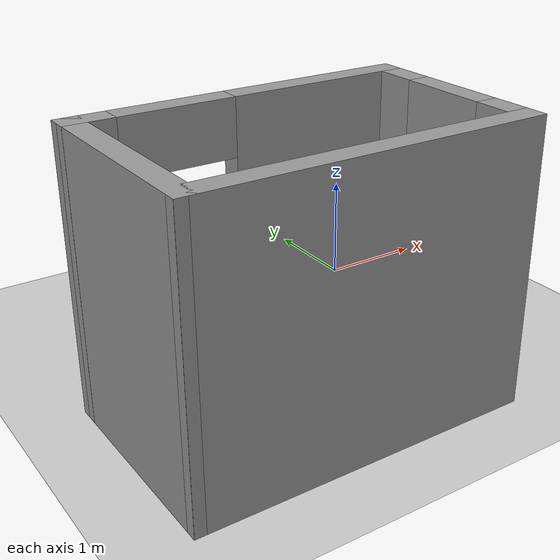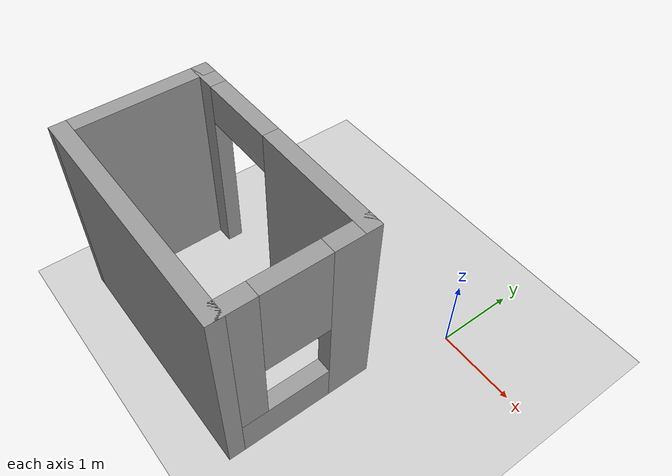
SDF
<sdf version="1.4">
 <world name="default">
  <light name="sun" type="directional">
   <pose>0 0 10 0 -0 0</pose>
   <diffuse>0.8 0.8 0.8 1</diffuse>
   <specular>0.2 0.2 0.2 1</specular>
   <attenuation>
    <range>1000</range>
    <constant>0.9</constant>
    <linear>0.01</linear>
    <quadratic>0.001</quadratic>
   </attenuation>
   <direction>-0.5 0.1 -0.9</direction>
  </light>
  <model name="ground_plane">
   <static>1</static>
   <link name="link">
    <collision name="collision">
     <geometry><plane><normal>0 0 1</normal><size>100 100</size></plane></geometry>
     <surface><friction><ode><mu>100</mu><mu2>50</mu2></ode></friction></surface>
    </collision>
    <visual name="visual">
     <cast_shadows>0</cast_shadows>
     <geometry><plane><normal>0 0 1</normal><size>100 100</size></plane></geometry>
     <material>
      <script><uri>file://media/materials/scripts/gazebo.material</uri><name>Gazebo/Grey</name></script>
     </material>
    </visual>
    <velocity_decay><linear>0</linear><angular>0</angular></velocity_decay>
   </link>
  </model>
  <physics type="ode">
   <max_step_size>0.001</max_step_size>
   <real_time_factor>1</real_time_factor>
   <real_time_update_rate>1000</real_time_update_rate>
   <gravity>0 0 -9.8</gravity>
  </physics>
  <scene><ambient>0.4 0.4 0.4 1</ambient><background>0.7 0.7 0.7 1</background><shadows>1</shadows></scene>
  <spherical_coordinates>
   <surface_model>EARTH_WGS84</surface_model>
   <latitude_deg>0</latitude_deg>
   <longitude_deg>0</longitude_deg>
   <elevation>0</elevation>
   <heading_deg>0</heading_deg>
  </spherical_coordinates>
  <model name="laberinto_prueba">
   <link name="Wall_6">
    <pose>-1.785 -1.14 0 0 -0 0</pose>
    <visual name="Wall_6_Visual_0">
     <pose>-1.325 0 1.25 0 -0 0</pose>
     <geometry><box><size>0.42 0.2 2.5</size></box></geometry>
     <material>
      <script><uri>file://media/materials/scripts/gazebo.material</uri><name>Gazebo/Grey</name></script>
     </material>
    </visual>
    <collision name="Wall_6_Collision_0">
     <geometry><box><size>0.42 0.2 2.5</size></box></geometry>
     <pose>-1.325 0 1.25 0 -0 0</pose>
    </collision>
    <visual name="Wall_6_Visual_1">
     <pose>0.71 0 1.25 0 -0 0</pose>
     <geometry><box><size>1.65 0.2 2.5</size></box></geometry>
     <material>
      <script><uri>file://media/materials/scripts/gazebo.material</uri><name>Gazebo/Grey</name></script>
     </material>
    </visual>
    <collision name="Wall_6_Collision_1">
     <geometry><box><size>1.65 0.2 2.5</size></box></geometry>
     <pose>0.71 0 1.25 0 -0 0</pose>
    </collision>
    <visual name="Wall_6_Visual_2">
     <pose>-0.615 0 2.25 0 -0 0</pose>
     <geometry><box><size>1 0.2 0.5</size></box></geometry>
     <material>
      <script><uri>file://media/materials/scripts/gazebo.material</uri><name>Gazebo/Grey</name></script>
     </material>
    </visual>
    <collision name="Wall_6_Collision_2">
     <geometry><box><size>1 0.2 0.5</size></box></geometry>
     <pose>-0.615 0 2.25 0 -0 0</pose>
    </collision>
    <velocity_decay><linear>0</linear><angular>0</angular></velocity_decay>
   </link>
   <link name="Wall_7">
    <pose>-0.35 -1.985 0 0 0 -1.5708</pose>
    <visual name="Wall_7_Visual_0">
     <pose>-0.665 0 1.25 0 -0 0</pose>
     <geometry><box><size>0.56 0.2 2.5</size></box></geometry>
     <material>
      <script><uri>file://media/materials/scripts/gazebo.material</uri><name>Gazebo/Grey</name></script>
     </material>
    </visual>
    <collision name="Wall_7_Collision_0">
     <geometry><box><size>0.56 0.2 2.5</size></box></geometry>
     <pose>-0.665 0 1.25 0 -0 0</pose>
    </collision>
    <visual name="Wall_7_Visual_1">
     <pose>0.28 0 0.25 0 -0 0</pose>
     <geometry><box><size>1.33 0.2 0.5</size></box></geometry>
     <material>
      <script><uri>file://media/materials/scripts/gazebo.material</uri><name>Gazebo/Grey</name></script>
     </material>
    </visual>
    <collision name="Wall_7_Collision_1">
     <geometry><box><size>1.33 0.2 0.5</size></box></geometry>
     <pose>0.28 0 0.25 0 -0 0</pose>
    </collision>
    <visual name="Wall_7_Visual_2">
     <pose>0.68 0 1.5 0 -0 0</pose>
     <geometry><box><size>0.53 0.2 2</size></box></geometry>
     <material>
      <script><uri>file://media/materials/scripts/gazebo.material</uri><name>Gazebo/Grey</name></script>
     </material>
    </visual>
    <collision name="Wall_7_Collision_2">
     <geometry><box><size>0.53 0.2 2</size></box></geometry>
     <pose>0.68 0 1.5 0 -0 0</pose>
    </collision>
    <visual name="Wall_7_Visual_3">
     <pose>0.015 0 1.9 0 -0 0</pose>
     <geometry><box><size>0.8 0.2 1.2</size></box></geometry>
     <material>
      <script><uri>file://media/materials/scripts/gazebo.material</uri><name>Gazebo/Grey</name></script>
     </material>
    </visual>
    <collision name="Wall_7_Collision_3">
     <geometry><box><size>0.8 0.2 1.2</size></box></geometry>
     <pose>0.015 0 1.9 0 -0 0</pose>
    </collision>
    <velocity_decay><linear>0</linear><angular>0</angular></velocity_decay>
   </link>
   <link name="Wall_8">
    <collision name="Wall_8_Collision">
     <geometry><box><size>3.06 0.2 2.5</size></box></geometry>
     <pose>0 0 1.25 0 -0 0</pose>
    </collision>
    <visual name="Wall_8_Visual">
     <pose>0 0 1.25 0 -0 0</pose>
     <geometry><box><size>3.06 0.2 2.5</size></box></geometry>
     <material>
      <script><uri>file://media/materials/scripts/gazebo.material</uri><name>Gazebo/Grey</name></script>
     </material>
    </visual>
    <velocity_decay><linear>0</linear><angular>0</angular></velocity_decay>
    <pose>-1.78 -2.83 0 0 -0 3.14159</pose>
   </link>
   <link name="Wall_9">
    <collision name="Wall_9_Collision">
     <geometry><box><size>1.89003 0.2 2.5</size></box></geometry>
     <pose>0 0 1.25 0 -0 0</pose>
    </collision>
    <visual name="Wall_9_Visual">
     <pose>0 0 1.25 0 -0 0</pose>
     <geometry><box><size>1.89003 0.2 2.5</size></box></geometry>
     <material>
      <script><uri>file://media/materials/scripts/gazebo.material</uri><name>Gazebo/Grey</name></script>
     </material>
    </visual>
    <velocity_decay><linear>0</linear><angular>0</angular></velocity_decay>
    <pose>-3.215 -1.985 0 0 -0 1.57671</pose>
   </link>
   <static>1</static>
  </model>
 </world>
</sdf>
